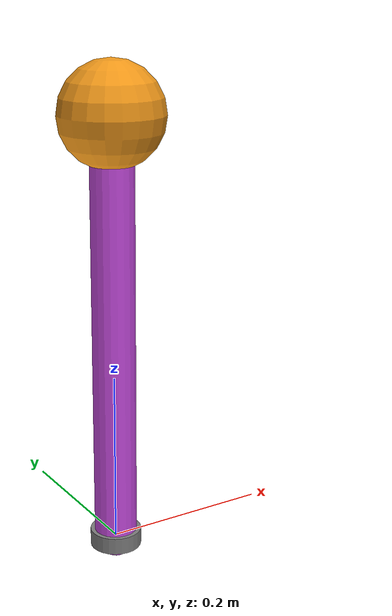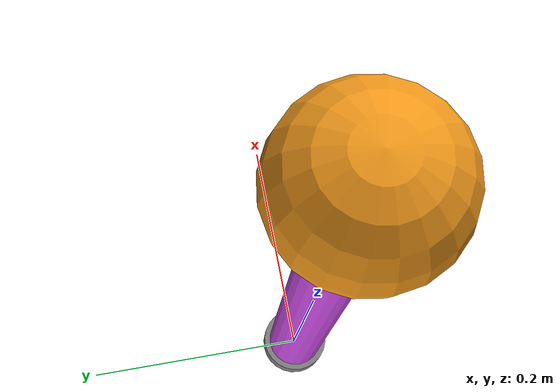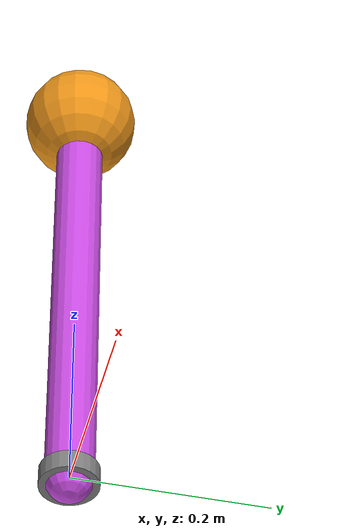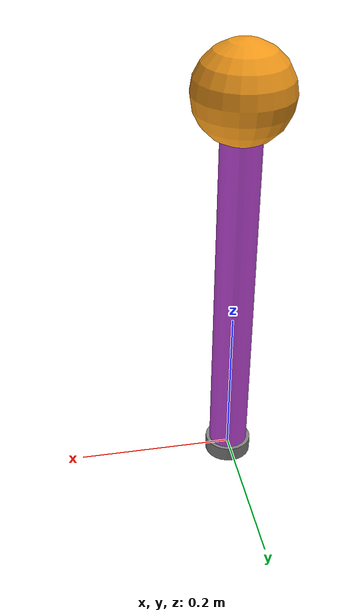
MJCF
<mujoco model="pendulum">
  <option timestep="0.01" gravity="0 0 -9.81"/>

  <worldbody>
    <light name="light" pos="0 0 3" dir="0 0 -1" diffuse="0.8 0.8 0.8"/>
    <geom name="pivot" type="cylinder" size="0.03 0.01" pos="0 0 0" rgba="0.5 0.5 0.5 1"/>

    <!-- 单摆: 铰链在原点, 摆杆沿 +Z, 摆尖有配重 -->
    <body name="pole" pos="0 0 0">
      <joint name="hinge" type="hinge" axis="0 1 0"/>
      <geom name="pole_geom" type="capsule" size="0.025 0.25" pos="0 0 0.25" rgba="0.8 0.3 0.9 1"/>
      <geom name="pole_mass" type="sphere" size="0.06" pos="0 0 0.5" rgba="0.95 0.6 0.1 1"/>
    </body>
  </worldbody>

  <!-- 力矩执行器: ctrl 单位 = Nm -->
  <actuator>
    <motor name="motor" joint="hinge" gear="1" ctrlrange="-10 10"/>
  </actuator>
</mujoco>
